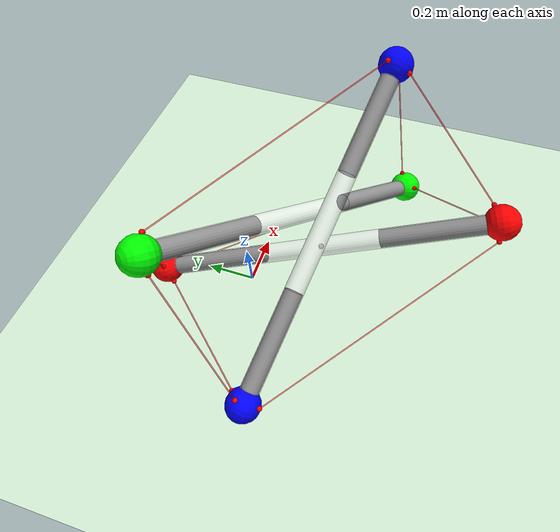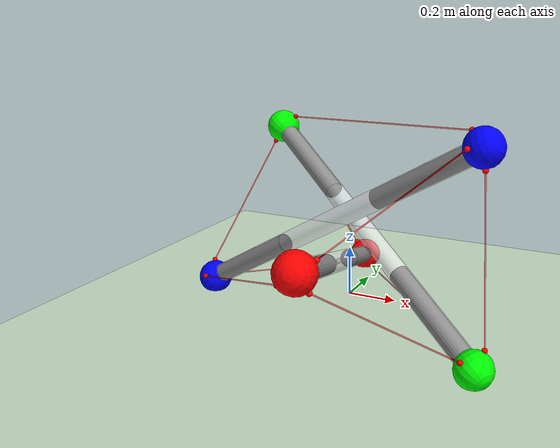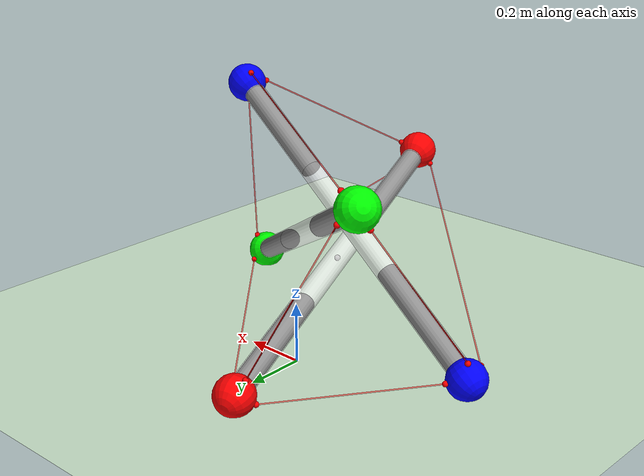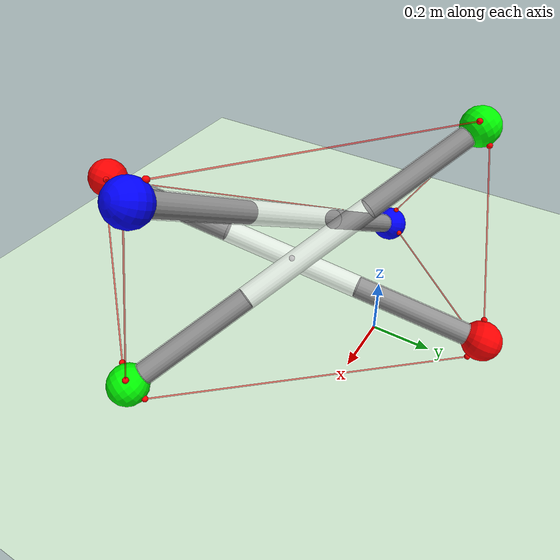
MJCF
<!--
  ~ Copyright (c) 2020.  -  present.  Kun Wang. All Rights Reserved.
  -->

<mujoco model="TT (v1.31)">
    <compiler angle="degree" coordinate="local" inertiafromgeom="true">
        <lengthrange timestep="0.001"/>
    </compiler>

    <option timestep="0.001"
            gravity="0 0 -9.81"
            cone="elliptic"
            solver="Newton"
            integrator="implicitfast"
            iterations="100"
            impratio="1">
            <!-- impratio default is 1 -->
        <flag sensornoise="enable"
              frictionloss="disable"/>
    </option>

    <visual>
        <global offwidth="1024" offheight="768"/>
    </visual>

    <default>
        <geom conaffinity="1" condim="6" contype="1" rgba="0.75 0.75 0.75 1" size="0.014" solref="-5000 -500"
              density="1000" friction="1 0.005 0.0001"/>
        <site type="sphere" size="0.02"/>
        <!-- red -->
        <!-- white -->
        <general ctrllimited='true' ctrlrange="-0.45 0.30" dyntype="filter" gainprm="6667 0 0" biastype="affine" dynprm="1 0 0" biasprm="3290 -6666 -133" forcelimited="true" forcerange="-267 0"/>
    </default>

    <asset>
        <texture builtin="gradient" height="100" rgb1="1 1 1" rgb2="0 0 0" type="skybox"
                 width="100"/>
        <texture builtin="flat" height="1278" mark="cross" markrgb="1 1 1" name="texgeom"
                 random="0.01" rgb1="0.8 0.6 0.4" rgb2="0.8 0.6 0.4" type="cube" width="127"/>
        <texture builtin="checker" height="100" name="texplane" rgb1="0 0 0" rgb2="0.8 0.8 0.8"
                 type="2d" width="100"/>
        <material name="MatPlane" reflectance="0." shininess="1" specular="1" texrepeat="10 10"
                  texture="texplane"/>
        <material name="geom" texture="texgeom" texuniform="true"/>
    </asset>

    <worldbody>

        <light cutoff="100" diffuse="1 1 1" dir="-0 0 -1.3" directional="true" exponent="1"
                pos="0 0 1.3" specular=".1 .1 .1"/>
        <geom conaffinity="1" material="MatPlane" name="floor" pos="0 0 0"
              rgba="0.8 0.9 0.8 1" size="10 10 1" type="plane"/>
        <!--         side camera-->
        <camera name="camera_side" pos="0 -5 1" euler="90 0 0"/>
        <!-- top 90 camera-->
        <camera name="camera_top90" pos="0 0 100" axisangle="0 0 1 0"/>
        <!-- top camera -->
        <camera name="camera_top" pos="0 -2 20" axisangle="1 0 0 10"/>

        <!-- ======= RODS ======= -->
        <body name="r01_body" pos="0.08369179 -0.28792231  0.24830847" quat="-0.49145555  0.7539914  -0.27511722 -0.33805166">
            <geom name="r01" size="0.0381 0.688" pos="0 0 0" quat="0 0 0 1" type="cylinder" mass="1.0" rgba="1 1 1 .6"/>
            <site name="IMU" pos="0 0 0" quat="0 0 0 1" size=".01"/>
            <freejoint name="move0_1"/>
            <geom name="s0" pos="0 0  0.688" size="0.0675" type="sphere" rgba="1 0 0 1" mass="0.5"/>
            <geom name="s1" pos="0 0 -0.688" size="0.0675" type="sphere" rgba="1 0 0 1" mass="0.5"/>
            <geom name="b0" fromto="0 0  0.688 0 0  0.238" size="0.035" type="cylinder" rgba="0 0 0 1" mass="1"/>
            <geom name="b1" fromto="0 0 -0.688 0 0 -0.238" size="0.035" type="cylinder" rgba="0 0 0 1" mass="1"/>
            <site name="s0" pos="0 0  0.688" rgba="0 0 0 1" size=".01"/>
            <site name="s1" pos="0 0 -0.688" rgba="0 0 0 1" size=".01"/>

            <site name="h02" pos="-0.0675  0     0.668" rgba="1 0 0 1" size=".01"/>
            <site name="h04" pos=" 0     0.0675  0.668" rgba="1 0 0 1" size=".01"/>
            <site name="h03" pos=" 0.0675  0     0.668" rgba="1 0 0 1" size=".01"/>
            <site name="h14" pos=" 0     0.0675 -0.668" rgba="1 0 0 1" size=".01"/>
            <site name="h13" pos=" 0.0675  0    -0.668" rgba="1 0 0 1" size=".01"/>
            <site name="h15" pos=" 0    -0.0675 -0.668" rgba="1 0 0 1" size=".01"/>
        </body>

        <body name="r23_body" pos="0.14497616 -0.19291743  0.35052097" quat="-0.84766041  0.27950622 0.45085889  0.00862359">
            <geom name="r23" size="0.0381 0.688" pos="0 0 0" quat="0 0 0 1" type="cylinder" mass="1.0" rgba="1 1 1 .6"/>
            <freejoint name="move2_3"/>
            <geom name="s2" pos="0 0  0.688" size="0.0675" type="sphere" rgba="0 1 0 1" mass="0.5"/>
            <geom name="s3" pos="0 0 -0.688" size="0.0675" type="sphere" rgba="0 1 0 1" mass="0.5"/>
            <geom name="b2" fromto="0 0  0.688 0 0  0.238" size="0.035" type="cylinder" rgba="0 0 0 1" mass="1"/>
            <geom name="b3" fromto="0 0 -0.688 0 0 -0.238" size="0.035" type="cylinder" rgba="0 0 0 1" mass="1"/>
            <site name="s2" pos="0 0  0.688" rgba="0 0 0 1" size=".01"/>
            <site name="s3" pos="0 0 -0.688" rgba="0 0 0 1" size=".01"/>

            <site name="h24" pos="-0.0675  0     0.668" rgba="1 0 0 1" size=".01"/>
            <site name="h20" pos=" 0     0.0675  0.668" rgba="1 0 0 1" size=".01"/>
            <site name="h25" pos=" 0.0675  0     0.668" rgba="1 0 0 1" size=".01"/>
            <site name="h30" pos=" 0     0.0675 -0.668" rgba="1 0 0 1" size=".01"/>
            <site name="h35" pos=" 0.0675  0    -0.668" rgba="1 0 0 1" size=".01"/>
            <site name="h31" pos=" 0    -0.0675 -0.668" rgba="1 0 0 1" size=".01"/>
        </body>

        <body name="r45_body" pos="0.04557825 -0.29876206  0.39531985" quat="-0.35798606 -0.47531391  0.72471075  0.34744352">
            <geom name="r45" size="0.0381 0.688" pos="0 0 0" quat="0 0 0 1" type="cylinder" mass="1.0" rgba="1 1 1 .6"/>
            <freejoint name="move4_5"/>
            <geom name="s4" pos="0 0  0.688" size="0.0675" type="sphere" rgba="0 0 1 1" mass="0.5"/>
            <geom name="s5" pos="0 0 -0.688" size="0.0675" type="sphere" rgba="0 0 1 1" mass="0.5"/>
            <geom name="b4" fromto="0 0  0.688 0 0  0.238" size="0.035" type="cylinder" rgba="0 0 0 1" mass="1"/>
            <geom name="b5" fromto="0 0 -0.688 0 0 -0.238" size="0.035" type="cylinder" rgba="0 0 0 1" mass="1"/>
            <site name="s4" pos="0 0  0.688" rgba="0 0 0 1" size=".01"/>
            <site name="s5" pos="0 0 -0.688" rgba="0 0 0 1" size=".01"/>

            <site name="h40" pos="-0.0675  0     0.668" rgba="1 0 0 1" size=".01"/>
            <site name="h42" pos=" 0     0.0675  0.668" rgba="1 0 0 1" size=".01"/>
            <site name="h41" pos=" 0.0675  0     0.668" rgba="1 0 0 1" size=".01"/>
            <site name="h52" pos=" 0     0.0675 -0.668" rgba="1 0 0 1" size=".01"/>
            <site name="h51" pos=" 0.0675  0    -0.668" rgba="1 0 0 1" size=".01"/>
            <site name="h53" pos=" 0    -0.0675 -0.668" rgba="1 0 0 1" size=".01"/>
        </body>
    </worldbody>

    <tendon>
        <spatial name="td_0" width="0.0025" rgba="1 0 0 0.5">
            <site site="h04"/>
            <site site="h40"/>
        </spatial>
        <spatial name="td_1" width="0.0025" rgba="1 0 0 0.5">
            <site site="h02"/>
            <site site="h20"/>
        </spatial>
        <spatial name="td_2" width="0.0025" rgba="1 0 0 0.5">
            <site site="h24"/>
            <site site="h42"/>
        </spatial>
        <spatial name="td_3" width="0.0025" rgba="1 0 0 0.5">
            <site site="h15"/>
            <site site="h51"/>
        </spatial>
        <spatial name="td_4" width="0.0025" rgba="1 0 0 0.5">
            <site site="h13"/>
            <site site="h31"/>
        </spatial>
        <spatial name="td_5" width="0.0025" rgba="1 0 0 0.5">
            <site site="h35"/>
            <site site="h53"/>
        </spatial>
        <spatial name="td_6" springlength="0.8" stiffness="700" width="0.0025" rgba="1 0 0 0.5" damping="100">
            <site site="h14"/>
            <site site="h41"/>
        </spatial>
        <spatial name="td_7" springlength="0.8" stiffness="700" width="0.0025" rgba="1 0 0 0.5" damping="100">
            <site site="h03"/>
            <site site="h30"/>
        </spatial>
        <spatial name="td_8" springlength="0.8" stiffness="700" width="0.0025" rgba="1 0 0 0.5" damping="100">
            <site site="h25"/>
            <site site="h52"/>
        </spatial>
    </tendon>

    <sensor>
        <accelerometer name="accelerometer" site="IMU" noise="0.043"/>
        <gyro name="gyro" site="IMU" noise="0.11"/>

        <!-- BELOW are all in world frame -->
        <framepos name="pos_s0" objname="s0" objtype="site"/>
        <framepos name="pos_s1" objname="s1" objtype="site"/>
        <framepos name="pos_s2" objname="s2" objtype="site"/>
        <framepos name="pos_s3" objname="s3" objtype="site"/>
        <framepos name="pos_s4" objname="s4" objtype="site"/>
        <framepos name="pos_s5" objname="s5" objtype="site"/>

        <framepos name="pos_r01" objname="r01" objtype="geom"/>
        <framepos name="pos_r23" objname="r23" objtype="geom"/>
        <framepos name="pos_r45" objname="r45" objtype="geom"/>

        <framequat name="quat_r01" objname="r01" objtype="geom"/>
        <framequat name="quat_r23" objname="r23" objtype="geom"/>
        <framequat name="quat_r45" objname="r45" objtype="geom"/>
        <framequat name="quat_IMU" objname="IMU" objtype="site"/>

        <framelinvel name="linvel_s0" objname="s0" objtype="site"/>
        <framelinvel name="linvel_s1" objname="s1" objtype="site"/>
        <framelinvel name="linvel_s2" objname="s2" objtype="site"/>
        <framelinvel name="linvel_s3" objname="s3" objtype="site"/>
        <framelinvel name="linvel_s4" objname="s4" objtype="site"/>
        <framelinvel name="linvel_s5" objname="s5" objtype="site"/>

        <framepos name="pos_IMU" objname="IMU" objtype="site"/>
    </sensor>

    <actuator>
        <general name='act_0' tendon="td_0"/>
        <general name='act_1' tendon="td_1"/>
        <general name='act_2' tendon="td_2"/>
        <general name='act_3' tendon="td_3"/>
        <general name='act_4' tendon="td_4"/>
        <general name='act_5' tendon="td_5"/>

    </actuator>
</mujoco>
